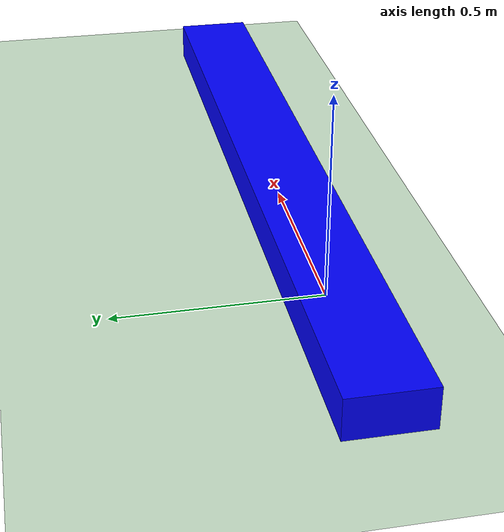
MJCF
<mujoco model="two_link_arm">
    <compiler angle="radian" coordinate="global"/>
    <option timestep="0.01" gravity="0 0 -9.81"/>
    <worldbody>
        <light pos="0 0 10" dir="0 0 -1" diffuse="1 1 1" specular=".1 .1 .1"/>
        <camera name="track" pos="0 -5 5" xyaxes="1 0 0 0 1 1.5" fovy="40"/>
        <geom name="floor" pos="0 0 0" size="10 10 0.1" rgba=".8 .9 .8 1" type="plane"/>
        <body name="link1" pos="0 0 0">
            <joint name="joint1" axis="0 0 1"/>
            <geom name="link1_geom" pos="0.5 0 0" size="1 0.1 0.1" rgba="0 0 1 1" type="box" density="1.0"/>
            <body name="link2" pos="1 0 0">
                <joint name="joint2" axis="0 0 1"/>
                <geom name="link2_geom" pos="0.5 0 0" size="1 0.1 0.1" rgba="1 0 0 1" type="box" density="1.0"/>
            </body>
        </body>
    </worldbody>
    <actuator>
        <motor joint="joint1" ctrlrange="-1.0 1.0"/>
        <motor joint="joint2" ctrlrange="-1.0 1.0"/>
    </actuator>
</mujoco>
